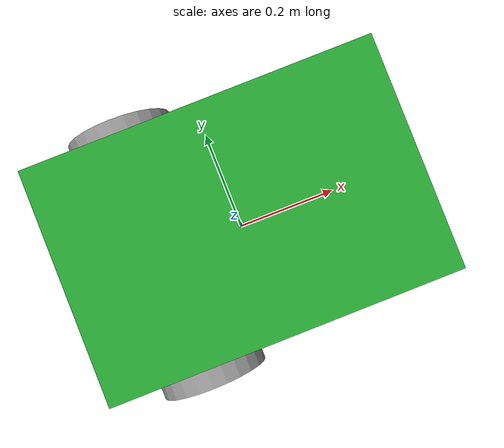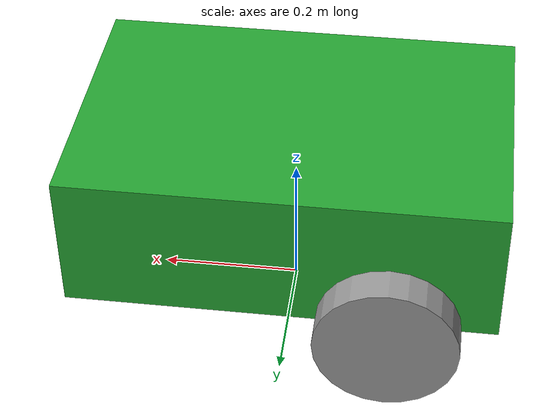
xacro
<?xml version="1.0"?>
<robot xmlns:xacro="http://www.ros.org/wiki/xacro">
  <xacro:property name="base_length" value="0.6" />
  <xacro:property name="base_width" value="0.4" />
  <xacro:property name="base_height" value="0.2" />
  <xacro:property name="wheel_radius" value="0.1" />
  <xacro:property name="wheel_length" value="0.05" />

  <link name="base_footprint" />

  <link name="base_link">
    <visual>
      <geometry>
        <box size="${base_length} ${base_width} ${base_height}" />
      </geometry>
      <origin xyz="0 0 ${base_height / 2.0}" rpy="0 0 0" />
      <material name="green" />
    </visual>
    <xacro:box_inertia m="5.0" x="${base_length}" y="${base_width}" z="${base_height}"
      o_xyz="0 0 ${base_height / 2.0}" o_rpy="0 0 0" />
    <collision>
      <geometry>
        <box size="${base_length} ${base_width} ${base_height}"
        />
      </geometry>
      <origin xyz="0 0 ${base_height / 2.0}" rpy="0 0 0" />
    </collision>
  </link>

  <xacro:macro name="wheel_link" params="prefix">
    <link name="${prefix}_wheel_link">
      <visual>
        <geometry>
          <cylinder radius="${wheel_radius}" length="${wheel_length}" />
        </geometry>
        <origin xyz="0 0 0" rpy="${pi / 2.0} 0 0" />
        <material name="gray" />
      </visual>
      <xacro:cylinder_inertia m="1.0" r="${wheel_radius}" l="${wheel_length}" o_xyz="0 0 0"
        o_rpy="${pi / 2.0} 0 0" />
      <collision>
        <geometry>
          <sphere radius="${wheel_radius}" />
        </geometry>
        <origin xyz="0 0 0" rpy="0 0 0" />
      </collision>

    </link>
  </xacro:macro>

  <xacro:wheel_link prefix="right" />
  <xacro:wheel_link prefix="left" />

  <link name="caster_wheel_link">
    <visual>
      <geometry>
        <sphere radius="${wheel_radius / 2.0}" />
      </geometry>
      <origin xyz="0 0 0" rpy="0 0 0" />
      <material name="gray" />
    </visual>
    <xacro:sphere_inertia m="0.5" r="${wheel_radius / 2.0}" o_xyz="0 0 0" o_rpy="0 0 0" />
    <collision>
      <geometry>
        <sphere radius="${wheel_radius / 2.0}" />
      </geometry>
      <origin xyz="0 0 0" rpy="0 0 0" />
    </collision>
  </link>

  <joint name="base_joint" type="fixed">
    <parent link="base_footprint" />
    <child link="base_link" />
    <origin xyz="0 0 ${wheel_radius}" rpy="0 0 0" />
  </joint>

  <joint name="base_right_wheel_joint" type="continuous">
    <parent link="base_link" />
    <child link="right_wheel_link" />
    <origin xyz="${-base_length / 4.0} ${-(base_width + wheel_length) / 2.0} 0" rpy="0 0 0" />
    <axis xyz="0 1 0" />
  </joint>

  <joint name="base_left_wheel_joint" type="continuous">
    <parent link="base_link" />
    <child link="left_wheel_link" />
    <origin xyz="${-base_length / 4.0} ${(base_width + wheel_length) / 2.0} 0" rpy="0 0 0" />
    <axis xyz="0 1 0" />
  </joint>

  <joint name="base_caster_wheel_joint" type="fixed">
    <parent link="base_link" />
    <child link="caster_wheel_link" />
    <origin xyz="${base_length / 3.0} 0 ${-wheel_radius / 2.0}" rpy="0 0 0" />
  </joint>

  <!-- Fixed joint connecting the base to the IMU -->
  <joint name="imu_joint" type="fixed">
    <parent link="base_link" />
    <child link="imu_link" />
    <origin xyz="0 0 0.01" rpy="0 0 0" />
  </joint>

  <!-- IMU link definition -->
  <link name="imu_link">
    <!-- Optional visual element for debugging -->
    <visual name="imu_link_visual">
      <origin xyz="0 0 0" rpy="0 0 0" />
      <geometry>
        <box size="0.1 0.1 0.1" />
      </geometry>
    </visual>

    <!-- Collision element (should match the visual shape for simplicity) -->
    <collision name="imu_link_collision">
      <origin xyz="0 0 0" rpy="0 0 0" />
      <geometry>
        <box size="0.1 0.1 0.1" />
      </geometry>
    </collision>

    <!-- Inertial properties using a xacro macro -->
    <xacro:box_inertia m="0.1" x="0.1" y="0.1" z="0.1" o_xyz="0 0 0.05" o_rpy="0 0 0" />
  </link>

  <!-- Gazebo extension to add the IMU sensor -->
  <gazebo reference="imu_link">
    <sensor type="imu" name="imu_sensor">
      <always_on>true</always_on>
      <update_rate>100</update_rate>
      <visualize>true</visualize>
      <topic>demo/imu</topic>
      <!-- Use Gazebo’s frame id parameter -->
      <frame_id>imu_link</frame_id>
      <imu>
        <angular_velocity>
          <x>
            <noise type="gaussian">
              <mean>0.0</mean>
              <stddev>0.0002</stddev>
              <bias_mean>0.0000075</bias_mean>
              <bias_stddev>0.0000008</bias_stddev>
            </noise>
          </x>
          <y>
            <noise type="gaussian">
              <mean>0.0</mean>
              <stddev>0.0002</stddev>
              <bias_mean>0.0000075</bias_mean>
              <bias_stddev>0.0000008</bias_stddev>
            </noise>
          </y>
          <z>
            <noise type="gaussian">
              <mean>0.0</mean>
              <stddev>0.0002</stddev>
              <bias_mean>0.0000075</bias_mean>
              <bias_stddev>0.0000008</bias_stddev>
            </noise>
          </z>
        </angular_velocity>
        <linear_acceleration>
          <x>
            <noise type="gaussian">
              <mean>0.0</mean>
              <stddev>0.017</stddev>
              <bias_mean>0.1</bias_mean>
              <bias_stddev>0.001</bias_stddev>
            </noise>
          </x>
          <y>
            <noise type="gaussian">
              <mean>0.0</mean>
              <stddev>0.017</stddev>
              <bias_mean>0.1</bias_mean>
              <bias_stddev>0.001</bias_stddev>
            </noise>
          </y>
          <z>
            <noise type="gaussian">
              <mean>0.0</mean>
              <stddev>0.017</stddev>
              <bias_mean>0.1</bias_mean>
              <bias_stddev>0.001</bias_stddev>
            </noise>
          </z>
        </linear_acceleration>
      </imu>
      <!-- Attach the Gazebo ROS IMU sensor plugin -->
      <plugin filename="gz-sim-imu-system"
        name="gz::sim::systems::Imu">
      </plugin>
    </sensor>
  </gazebo>

</robot>
